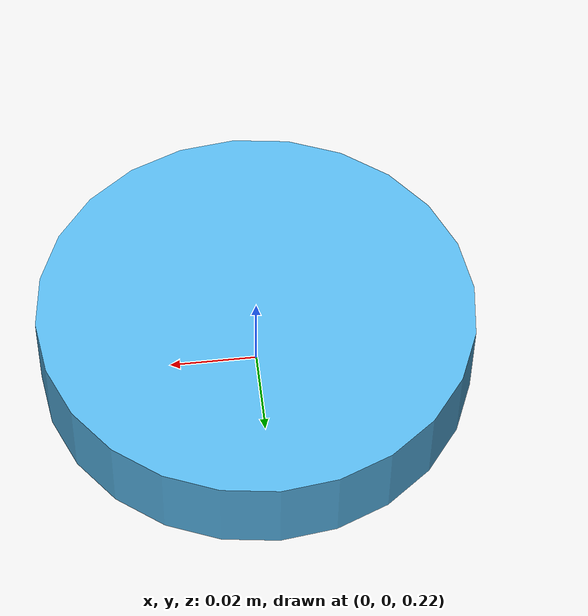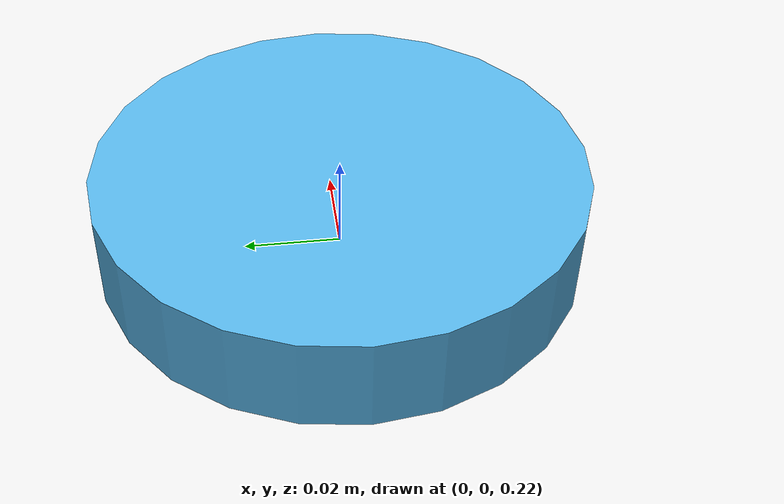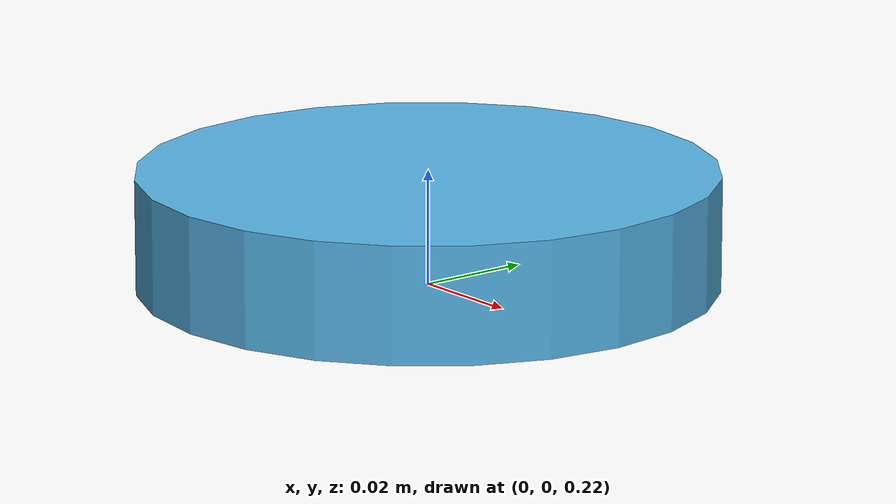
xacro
<?xml version="1.0"?>
<robot name="dhuro_omnibot" xmlns:xacro="http://www.ros.org/wiki/xacro">

<link name="base_footprint"/>

<link name="laser">
    <visual>
        <geometry>
            <cylinder radius="0.05" length="0.02"/>
        </geometry>
        <origin xyz="0 0 0" rpy="0 0 0"/>
    </visual>

    <collision>
        <geometry>
            <cylinder radius="0.05" length="0.02"/>
        </geometry>
        <origin xyz="0 0 0.23" rpy="0 0 0"/>
    </collision>

    <inertial>
        <mass value="0.1"/>
        <origin xyz="0 0 0.23" rpy="0 0 0"/>
        <inertia
        ixx="0.001" ixy="0.0" ixz="0.0"
        iyy="0.001" iyz="0.0"
        izz="0.001"/>
    </inertial>
</link>

<joint name="base_laser_joint" type="fixed">
    <parent link="base_footprint"/>
    <child link="laser"/>
    <origin xyz="0 0 0.23" rpy="0 0 0"/>
</joint>

</robot>
